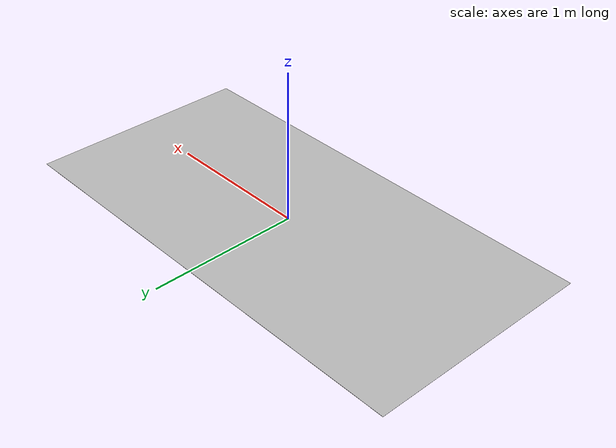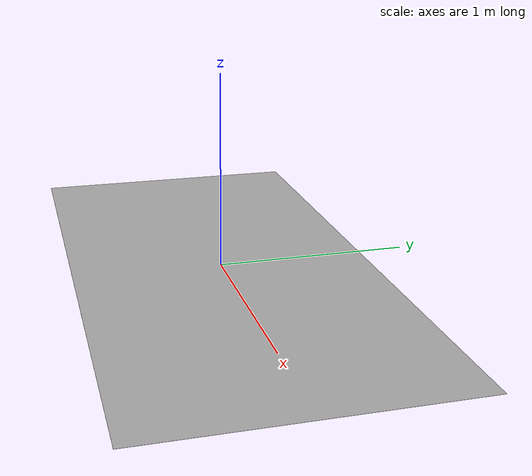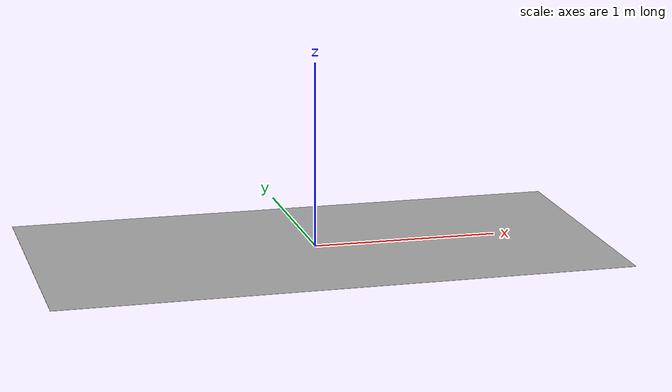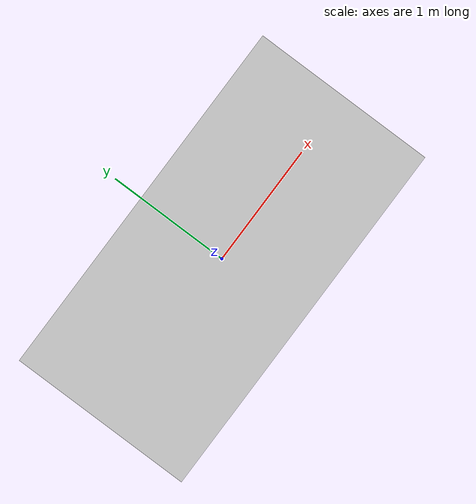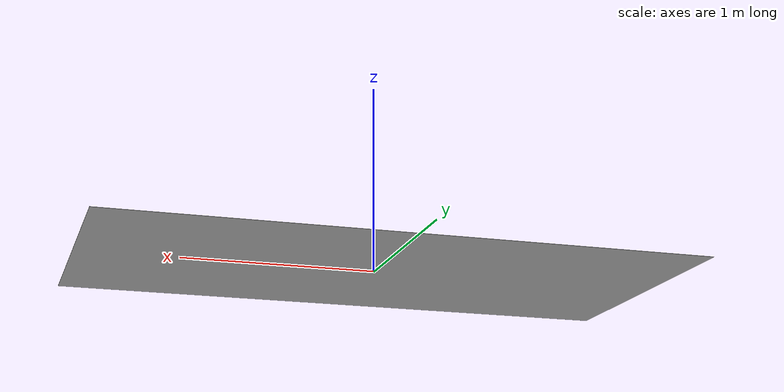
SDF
<?xml version="1.0" ?>
<sdf version="1.5">
    <model name="arena_ground">
        <static>true</static>
        <link name="link">
            <collision name="collision">
                <geometry>
                    <plane>
                        <normal>0 0 1</normal>
                        <size>100 100</size>
                    </plane>
                </geometry>
                <surface>
                    <friction>
                        <ode>
                            <mu>100</mu>
                            <mu2>50</mu2>
                        </ode>
                    </friction>
                </surface>
            </collision>
            <visual name="visual">
                <cast_shadows>false</cast_shadows>
                <geometry>
                    <plane>
                        <normal>0 0 1</normal>
                        <size>3.048 1.524</size>
                    </plane>
                </geometry>
                <material>
                    <script>
                        <uri>model://arena_ground/materials/scripts</uri>
                        <uri>model://arena_ground/materials/textures</uri>
                        <name>arena/Image</name>
                    </script>
                </material>
            </visual>
        </link>
    </model>
</sdf>
